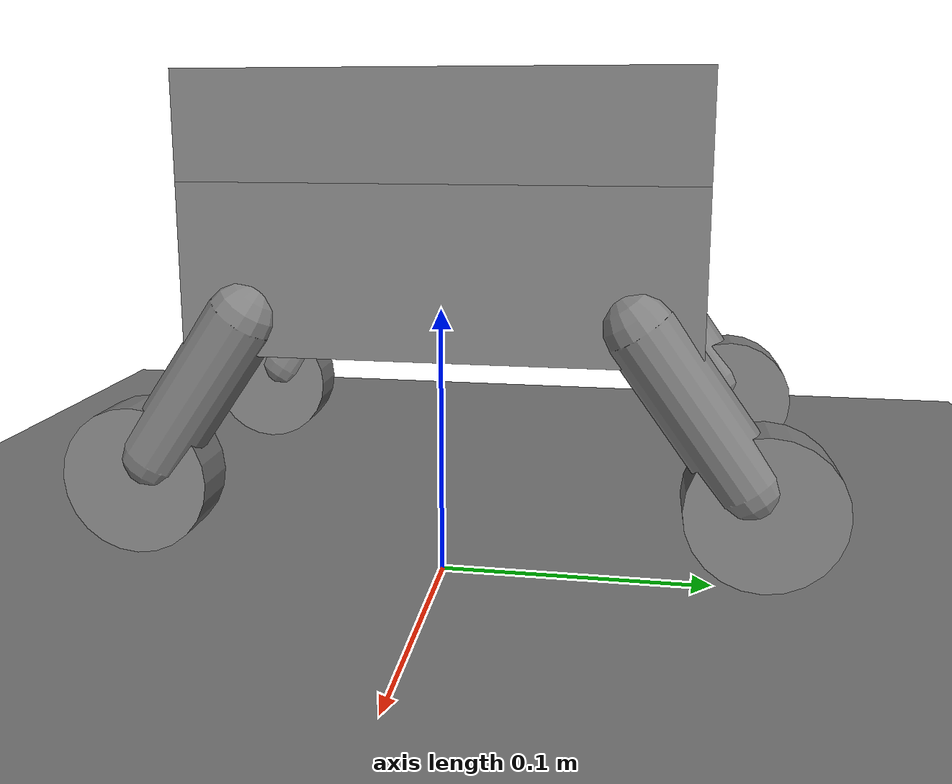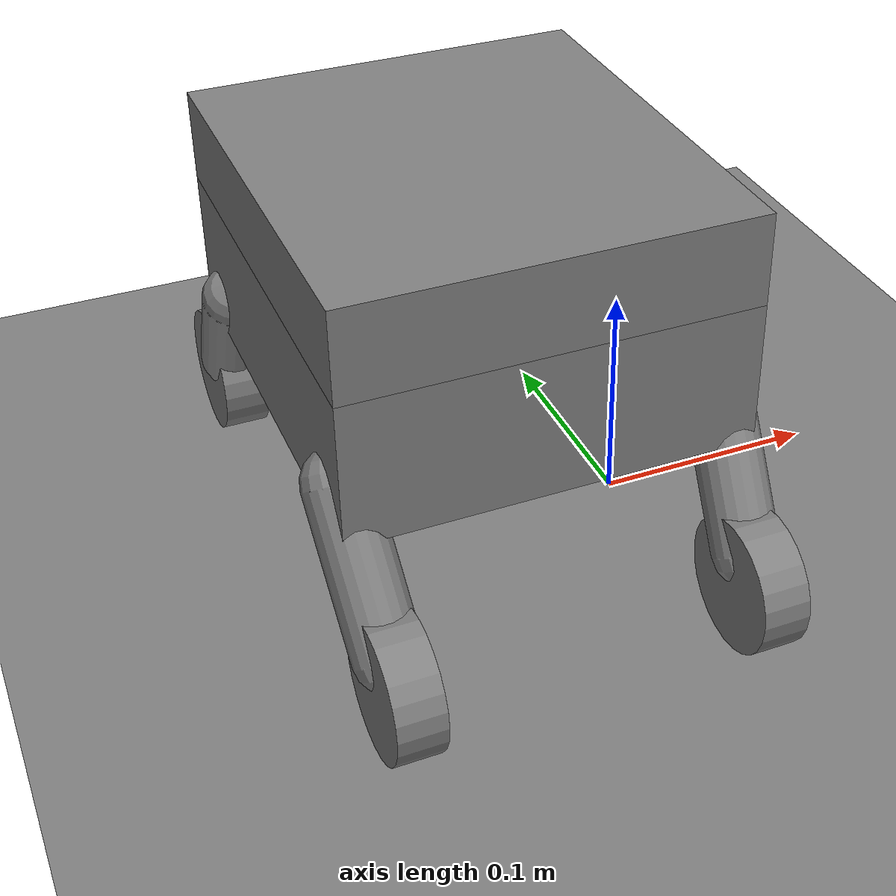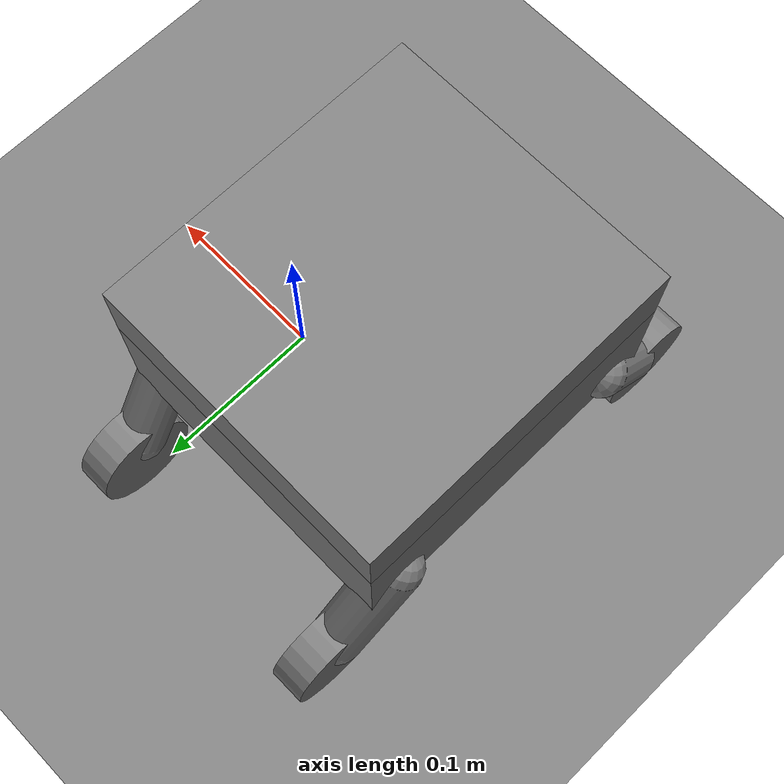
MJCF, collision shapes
<mujoco model="General Robotics Robot">

    <compiler angle="degree"
              meshdir="Assets"
              inertiafromgeom="false"/>

    <option timestep="0.001"
            gravity="0 0 -9.81"
            integrator="implicitfast"
            iterations="50"/>

    <!-- ASSETS                                                 -->

    <asset>

        <mesh name="base_mesh" file="base_link.stl"/>

        <mesh name="leg_fl_mesh" file="Leg_FL.stl"/>
        <mesh name="leg_fr_mesh" file="Leg_FR.stl"/>
        <mesh name="leg_bl_mesh" file="Leg_BL.stl"/>
        <mesh name="leg_br_mesh" file="Leg_BR.stl"/>

        <mesh name="wheel_fl_mesh" file="Wheel_FL.stl"/>
        <mesh name="wheel_fr_mesh" file="Wheel_FR.stl"/>
        <mesh name="wheel_bl_mesh" file="Wheel_BL.stl"/>
        <mesh name="wheel_br_mesh" file="Wheel_BR.stl"/>

    </asset>

    <!-- WORLD                                                  -->

    <worldbody>

        <geom name="floor"
              type="plane"
              pos="0 0 0"
              size="2 2 0.1"
              friction="1 0.05 0.01"
              contype="1"
              conaffinity="1"
              group="0"/>

        <!-- ROBOT                                              -->

        <body name="base_link"
              pos="0 0 0.08373">

            <freejoint name="root_freejoint"/>

            <!-- BASE                                               -->

            <geom name="base_visual"
                  type="mesh"
                  mesh="base_mesh"
                  contype="0"
                  conaffinity="0"
                  group="2"/>

            <inertial
                pos="-0.070214 -0.000712 0.050450"
                mass="2.188379"
                fullinertia="
                    0.076070
                    0.085530
                    0.122000
                    0.000022967131
                    -0.000009709464
                    -0.000011921456"/>

            <site name="imu_site"
                  pos="-0.070214 -0.000712 0.050450"
                  size="0.005"
                  rgba="1 0 0 1"/>

            <geom name="base_collision_lower"
                  type="box"
                  pos="-0.070 0 0.03125"
                  size="0.085 0.093 0.03125"
                  friction="1 0.05 0.01"
                  contype="1"
                  conaffinity="1"
                  group="3"/>

            <geom name="base_collision_upper"
                  type="box"
                  pos="-0.070 0 0.08200"
                  size="0.085 0.093 0.01950"
                  friction="1 0.05 0.01"
                  contype="1"
                  conaffinity="1"
                  group="3"/>

            <!-- FRONT RIGHT                                       -->

            <body name="Leg_FR"
                  pos="0.010 0.065 0.0225">

                <!--
                    FRONT-RIGHT RANGE
                    -75 deg -> +45 deg
                -->

                <joint name="hip_FR"
                       type="hinge"
                       axis="1 0 0"
                       damping="2"
                       limited="true"
                       range="-75 45"/>

                <geom name="leg_FR_visual"
                      type="mesh"
                      mesh="leg_fr_mesh"
                      pos="-0.010 -0.065 -0.0225"
                      contype="0"
                      conaffinity="0"
                      group="2"/>

                <geom name="leg_FR_collision"
                      type="capsule"
                      fromto="
                          -0.0006 0.0061 -0.0087
                          -0.0044 0.0450 -0.0640"
                      size="0.014"
                      friction="1 0.05 0.01"
                      contype="1"
                      conaffinity="1"
                      group="3"/>

                <inertial
                    pos="0.039288 0.029282 -0.041676"
                    mass="0.082136"
                    fullinertia="
                        0.000136800
                        0.000116800
                        0.000075936346
                        -0.000007677130
                        0.000010997569
                        0.000057220861"/>

                <body name="Wheel_FR"
                      pos="-0.005 0.051075 -0.072731">

                    <joint name="wheel_FR"
                           type="hinge"
                           axis="1 0 0"
                           damping="0.02"/>

                    <geom name="wheel_FR_visual"
                          type="mesh"
                          mesh="wheel_fr_mesh"
                          pos="-0.005 -0.116075 0.050231"
                          contype="0"
                          conaffinity="0"
                          group="2"/>

                    <geom name="wheel_FR_collision"
                          type="cylinder"
                          pos="0 0 0"
                          euler="0 90 0"
                          size="0.0284985 0.010"
                          friction="1 0.05 0.01"
                          contype="1"
                          conaffinity="1"
                          group="3"/>

                    <inertial
                        pos="-0.001355 0 0"
                        mass="0.038316"
                        fullinertia="
                            0.000018581992
                            0.000011054022
                            0.000011053486
                            0
                            0
                            0.000000001523"/>

                </body>

            </body>

            <!-- FRONT LEFT                                        -->

            <body name="Leg_FL"
                  pos="-0.150 0.065 0.0225">

                <!--
                    FRONT-LEFT RANGE
                    -75 deg -> +45 deg
                -->

                <joint name="hip_FL"
                       type="hinge"
                       axis="1 0 0"
                       damping="2"
                       limited="true"
                       range="-75 45"/>

                <geom name="leg_FL_visual"
                      type="mesh"
                      mesh="leg_fl_mesh"
                      pos="0.150 -0.065 -0.0225"
                      contype="0"
                      conaffinity="0"
                      group="2"/>

                <geom name="leg_FL_collision"
                      type="capsule"
                      fromto="
                          0.0006 0.0061 -0.0087
                          0.0044 0.0450 -0.0640"
                      size="0.014"
                      friction="1 0.05 0.01"
                      contype="1"
                      conaffinity="1"
                      group="3"/>

                <inertial
                    pos="-0.037573 0.035469 -0.050682"
                    mass="0.141223"
                    fullinertia="
                        0.000172400
                        0.000145600
                        0.000093954807
                        0.000005261590
                        -0.000007566613
                        0.000071755082"/>

                <body name="Wheel_FL"
                      pos="0.005 0.051075 -0.072731">

                    <joint name="wheel_FL"
                           type="hinge"
                           axis="1 0 0"
                           damping="0.02"/>

                    <geom name="wheel_FL_visual"
                          type="mesh"
                          mesh="wheel_fl_mesh"
                          pos="0.145 -0.116075 0.050231"
                          contype="0"
                          conaffinity="0"
                          group="2"/>

                    <geom name="wheel_FL_collision"
                          type="cylinder"
                          pos="0 0 0"
                          euler="0 90 0"
                          size="0.0284985 0.010"
                          friction="1 0.05 0.01"
                          contype="1"
                          conaffinity="1"
                          group="3"/>

                    <inertial
                        pos="0.001355 0 0"
                        mass="0.038316"
                        fullinertia="
                            0.000018581992
                            0.000011054022
                            0.000011053486
                            0
                            0
                            0.000000001523"/>

                </body>

            </body>

            <!-- BACK RIGHT                                        -->

            <body name="Leg_BR"
                  pos="0.010 -0.065 0.0225">

                <!--
                    BACK-RIGHT RANGE
                    -45 deg -> +75 deg
                -->

                <joint name="hip_BR"
                       type="hinge"
                       axis="1 0 0"
                       damping="2"
                       limited="true"
                       range="-45 75"/>

                <geom name="leg_BR_visual"
                      type="mesh"
                      mesh="leg_br_mesh"
                      pos="-0.010 0.065 -0.0225"
                      contype="0"
                      conaffinity="0"
                      group="2"/>

                <geom name="leg_BR_collision"
                      type="capsule"
                      fromto="
                          -0.0006 -0.0061 -0.0087
                          -0.0044 -0.0450 -0.0640"
                      size="0.014"
                      friction="1 0.05 0.01"
                      contype="1"
                      conaffinity="1"
                      group="3"/>

                <inertial
                    pos="0.039288 -0.029282 -0.041676"
                    mass="0.082135"
                    fullinertia="
                        0.000136800
                        0.000116800
                        0.000075935966
                        0.000007676943
                        0.000010997300
                        -0.000057220600"/>

                <body name="Wheel_BR"
                      pos="-0.005 -0.051075 -0.072731">

                    <joint name="wheel_BR"
                           type="hinge"
                           axis="1 0 0"
                           damping="0.02"/>

                    <geom name="wheel_BR_visual"
                          type="mesh"
                          mesh="wheel_br_mesh"
                          pos="-0.005 0.116075 0.050231"
                          contype="0"
                          conaffinity="0"
                          group="2"/>

                    <geom name="wheel_BR_collision"
                          type="cylinder"
                          pos="0 0 0"
                          euler="0 90 0"
                          size="0.0284985 0.010"
                          friction="1 0.05 0.01"
                          contype="1"
                          conaffinity="1"
                          group="3"/>

                    <inertial
                        pos="-0.001355 0 0"
                        mass="0.038316"
                        fullinertia="
                            0.000018581992
                            0.000011054022
                            0.000011053486
                            0
                            0
                            -0.000000001523"/>

                </body>

            </body>

            <!-- BACK LEFT                                         -->

            <body name="Leg_BL"
                  pos="-0.150 -0.065 0.0225">

                <joint name="hip_BL"
                       type="hinge"
                       axis="1 0 0"
                       damping="2"
                       limited="true"
                       range="-45 75"/>

                <geom name="leg_BL_visual"
                      type="mesh"
                      mesh="leg_bl_mesh"
                      pos="0.150 0.065 -0.0225"
                      contype="0"
                      conaffinity="0"
                      group="2"/>

                <geom name="leg_BL_collision"
                      type="capsule"
                      fromto="
                          0.0006 -0.0061 -0.0087
                          0.0044 -0.0450 -0.0640"
                      size="0.014"
                      friction="1 0.05 0.01"
                      contype="1"
                      conaffinity="1"
                      group="3"/>

                <inertial
                    pos="-0.039288 -0.029282 -0.041676"
                    mass="0.082135"
                    fullinertia="
                        0.000136800
                        0.000116800
                        0.000075935772
                        -0.000007677012
                        -0.000010997397
                        -0.000057220295"/>

                <body name="Wheel_BL"
                      pos="0.005 -0.051075 -0.072731">

                    <joint name="wheel_BL"
                           type="hinge"
                           axis="1 0 0"
                           damping="0.02"/>

                    <geom name="wheel_BL_visual"
                          type="mesh"
                          mesh="wheel_bl_mesh"
                          pos="0.145 0.116075 0.050231"
                          contype="0"
                          conaffinity="0"
                          group="2"/>

                    <geom name="wheel_BL_collision"
                          type="cylinder"
                          pos="0 0 0"
                          euler="0 90 0"
                          size="0.0284985 0.010"
                          friction="1 0.05 0.01"
                          contype="1"
                          conaffinity="1"
                          group="3"/>

                    <inertial
                        pos="0.001355 0 0"
                        mass="0.038316"
                        fullinertia="
                            0.000018581992
                            0.000011054022
                            0.000011053486
                            0
                            0
                            -0.000000001523"/>

                </body>

            </body>

        </body>

    </worldbody>

    <!-- CONTACT EXCLUSIONS                                     -->

    <contact>

        <exclude body1="base_link" body2="Leg_FR"/>
        <exclude body1="base_link" body2="Leg_FL"/>
        <exclude body1="base_link" body2="Leg_BR"/>
        <exclude body1="base_link" body2="Leg_BL"/>

        <exclude body1="Leg_FR" body2="Wheel_FR"/>
        <exclude body1="Leg_FL" body2="Wheel_FL"/>
        <exclude body1="Leg_BR" body2="Wheel_BR"/>
        <exclude body1="Leg_BL" body2="Wheel_BL"/>

    </contact>

    <!-- ACTUATORS                                              -->

    <actuator>

        <!-- FRONT RIGHT                                       -->
        <!-- -75 deg -> +45 deg                                -->

        <position name="hip_motor_FR"
                  joint="hip_FR"
                  kp="10"
                  ctrlrange="-1.308997 0.785398"/>

        <!-- FRONT LEFT                                        -->
        <!-- -75 deg -> +45 deg                                -->

        <position name="hip_motor_FL"
                  joint="hip_FL"
                  kp="10"
                  ctrlrange="-1.308997 0.785398"/>

        <!-- BACK RIGHT                                        -->
        <!-- -45 deg -> +75 deg                                -->

        <position name="hip_motor_BR"
                  joint="hip_BR"
                  kp="10"
                  ctrlrange="-0.785398 1.308997"/>

        <!-- BACK LEFT                                         -->
        <!-- FIXED: -45 deg -> +75 deg                         -->

        <position name="hip_motor_BL"
                  joint="hip_BL"
                  kp="10"
                  ctrlrange="-0.785398 1.308997"/>

        <!-- WHEEL TORQUE ACTUATORS                             -->

        <motor name="wheel_motor_FR"
               joint="wheel_FR"
               gear="1"
               ctrllimited="true"
               ctrlrange="-1 1"/>

        <motor name="wheel_motor_FL"
               joint="wheel_FL"
               gear="1"
               ctrllimited="true"
               ctrlrange="-1 1"/>

        <motor name="wheel_motor_BR"
               joint="wheel_BR"
               gear="1"
               ctrllimited="true"
               ctrlrange="-1 1"/>

        <motor name="wheel_motor_BL"
               joint="wheel_BL"
               gear="1"
               ctrllimited="true"
               ctrlrange="-1 1"/>

    </actuator>

    <!-- SENSORS                                                -->

    <sensor>

        <framequat name="imu_orientation"
                   objtype="site"
                   objname="imu_site"/>

        <gyro name="imu_gyro"
              site="imu_site"/>

        <accelerometer name="imu_accel"
                       site="imu_site"/>

        <framepos name="robot_position"
                  objtype="site"
                  objname="imu_site"/>

    </sensor>

</mujoco>
